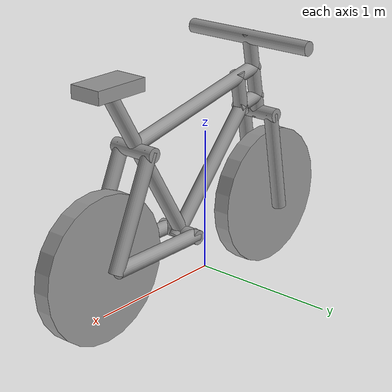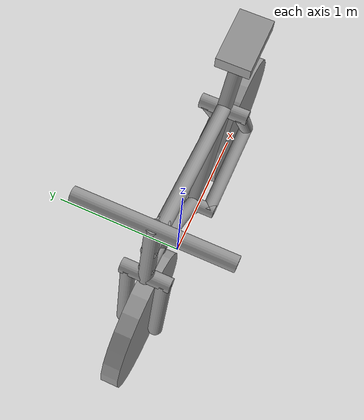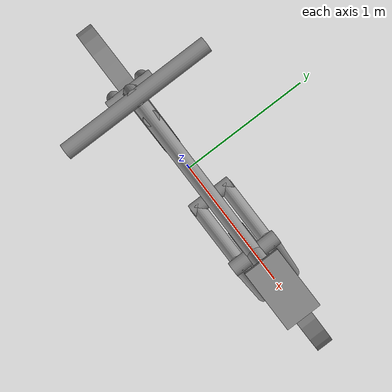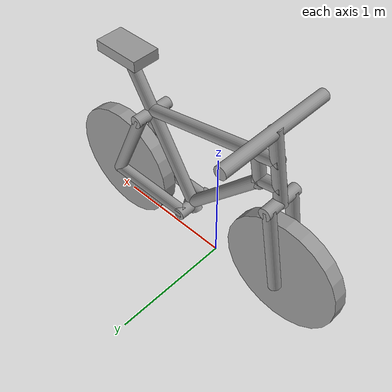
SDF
<sdf version="1.6">
 <model name="turtle1">
  <link name="link_0">
   <pose>1.02325 -0 0.352338 1.5707 -0 0</pose>
   <inertial>
    <mass>1</mass>
    <inertia><ixx>0.145833</ixx><ixy>0</ixy><ixz>0</ixz><iyy>0.145833</iyy><iyz>0</iyz><izz>0.125</izz></inertia>
   </inertial>
   <visual name="visual">
    <geometry><cylinder><radius>0.5</radius><length>0.12</length></cylinder></geometry>
    <material>
     <lighting>1</lighting>
     <script><uri>file://media/materials/scripts/gazebo.material</uri><name>Gazebo/Grey</name></script>
     <ambient>0.3 0.3 0.3 1</ambient>
     <diffuse>0.7 0.7 0.7 1</diffuse>
     <specular>0.01 0.01 0.01 1</specular>
     <emissive>0 0 0 1</emissive>
     <shader type="vertex"><normal_map>__default__</normal_map></shader>
    </material>
   </visual>
   <collision name="collision">
    <geometry><cylinder><radius>0.5</radius><length>0.12</length></cylinder></geometry>
    <surface>
     <friction>
      <ode><mu>1</mu><mu2>1</mu2><fdir1>0 0 0</fdir1><slip1>0</slip1><slip2>0</slip2></ode>
      <torsional>
       <coefficient>1</coefficient>
       <patch_radius>0</patch_radius>
       <surface_radius>0</surface_radius>
       <use_patch_radius>1</use_patch_radius>
       <ode><slip>0</slip></ode>
      </torsional>
     </friction>
     <bounce><restitution_coefficient>0</restitution_coefficient><threshold>1e+06</threshold></bounce>
     <contact>
      <collide_without_contact>0</collide_without_contact>
      <collide_without_contact_bitmask>1</collide_without_contact_bitmask>
      <collide_bitmask>1</collide_bitmask>
      <ode>
       <soft_cfm>0</soft_cfm>
       <soft_erp>0.2</soft_erp>
       <kp>1e+13</kp>
       <kd>1</kd>
       <max_vel>0.01</max_vel>
       <min_depth>0</min_depth>
      </ode>
      <bullet>
       <split_impulse>1</split_impulse>
       <split_impulse_penetration_threshold>-0.01</split_impulse_penetration_threshold>
       <soft_cfm>0</soft_cfm>
       <soft_erp>0.2</soft_erp>
       <kp>1e+13</kp>
       <kd>1</kd>
      </bullet>
     </contact>
    </surface>
   </collision>
  </link>
  <link name="link_0_0">
   <pose>-0.625228 -0.12 0.648148 0 0.169207 0</pose>
   <inertial>
    <mass>0.0814675</mass>
    <inertia>
     <ixx>0.00720375</ixx>
     <ixy>0</ixy>
     <ixz>0</ixz>
     <iyy>0.00720375</iyy>
     <iyz>0</iyz>
     <izz>0.00082962</izz>
    </inertia>
   </inertial>
   <visual name="visual">
    <geometry><cylinder><radius>0.05</radius><length>0.75</length></cylinder></geometry>
    <material>
     <lighting>1</lighting>
     <script><uri>file://media/materials/scripts/gazebo.material</uri><name>Gazebo/Grey</name></script>
     <ambient>0.3 0.3 0.3 1</ambient>
     <diffuse>0.7 0.7 0.7 1</diffuse>
     <specular>0.01 0.01 0.01 1</specular>
     <emissive>0 0 0 1</emissive>
     <shader type="vertex"><normal_map>__default__</normal_map></shader>
    </material>
   </visual>
   <collision name="collision">
    <geometry><cylinder><radius>0.05</radius><length>0.75</length></cylinder></geometry>
    <surface>
     <friction>
      <ode><mu>1</mu><mu2>1</mu2><fdir1>0 0 0</fdir1><slip1>0</slip1><slip2>0</slip2></ode>
      <torsional>
       <coefficient>1</coefficient>
       <patch_radius>0</patch_radius>
       <surface_radius>0</surface_radius>
       <use_patch_radius>1</use_patch_radius>
       <ode><slip>0</slip></ode>
      </torsional>
     </friction>
     <bounce><restitution_coefficient>0</restitution_coefficient><threshold>1e+06</threshold></bounce>
     <contact>
      <collide_without_contact>0</collide_without_contact>
      <collide_without_contact_bitmask>1</collide_without_contact_bitmask>
      <collide_bitmask>1</collide_bitmask>
      <ode>
       <soft_cfm>0</soft_cfm>
       <soft_erp>0.2</soft_erp>
       <kp>1e+13</kp>
       <kd>1</kd>
       <max_vel>0.01</max_vel>
       <min_depth>0</min_depth>
      </ode>
      <bullet>
       <split_impulse>1</split_impulse>
       <split_impulse_penetration_threshold>-0.01</split_impulse_penetration_threshold>
       <soft_cfm>0</soft_cfm>
       <soft_erp>0.2</soft_erp>
       <kp>1e+13</kp>
       <kd>1</kd>
      </bullet>
     </contact>
    </surface>
   </collision>
  </link>
  <link name="link_0_0_clone">
   <pose>-0.625228 0.12 0.648148 0 0.169207 0</pose>
   <inertial>
    <mass>0.0814675</mass>
    <inertia>
     <ixx>0.00720375</ixx>
     <ixy>0</ixy>
     <ixz>0</ixz>
     <iyy>0.00720375</iyy>
     <iyz>0</iyz>
     <izz>0.00082962</izz>
    </inertia>
   </inertial>
   <visual name="visual_0">
    <geometry><cylinder><radius>0.05</radius><length>0.75</length></cylinder></geometry>
    <material>
     <lighting>1</lighting>
     <script><uri>file://media/materials/scripts/gazebo.material</uri><name>Gazebo/Grey</name></script>
     <ambient>0.3 0.3 0.3 1</ambient>
     <diffuse>0.7 0.7 0.7 1</diffuse>
     <specular>0.01 0.01 0.01 1</specular>
     <emissive>0 0 0 1</emissive>
     <shader type="vertex"><normal_map>__default__</normal_map></shader>
    </material>
   </visual>
   <collision name="collision">
    <geometry><cylinder><radius>0.05</radius><length>0.75</length></cylinder></geometry>
    <surface>
     <friction>
      <ode><mu>1</mu><mu2>1</mu2><fdir1>0 0 0</fdir1><slip1>0</slip1><slip2>0</slip2></ode>
      <torsional>
       <coefficient>1</coefficient>
       <patch_radius>0</patch_radius>
       <surface_radius>0</surface_radius>
       <use_patch_radius>1</use_patch_radius>
       <ode><slip>0</slip></ode>
      </torsional>
     </friction>
     <bounce><restitution_coefficient>0</restitution_coefficient><threshold>1e+06</threshold></bounce>
     <contact>
      <collide_without_contact>0</collide_without_contact>
      <collide_without_contact_bitmask>1</collide_without_contact_bitmask>
      <collide_bitmask>1</collide_bitmask>
      <ode>
       <soft_cfm>0</soft_cfm>
       <soft_erp>0.2</soft_erp>
       <kp>1e+13</kp>
       <kd>1</kd>
       <max_vel>0.01</max_vel>
       <min_depth>0</min_depth>
      </ode>
      <bullet>
       <split_impulse>1</split_impulse>
       <split_impulse_penetration_threshold>-0.01</split_impulse_penetration_threshold>
       <soft_cfm>0</soft_cfm>
       <soft_erp>0.2</soft_erp>
       <kp>1e+13</kp>
       <kd>1</kd>
      </bullet>
     </contact>
    </surface>
   </collision>
  </link>
  <link name="link_0_1">
   <pose>-0.358078 -0 1.18776 0.001566 0.170039 0.000158</pose>
   <inertial>
    <mass>0.0427594</mass>
    <inertia>
     <ixx>0.00153031</ixx>
     <ixy>0</ixy>
     <ixz>0</ixz>
     <iyy>0.00153031</iyy>
     <iyz>0</iyz>
     <izz>0.00037209</izz>
    </inertia>
   </inertial>
   <visual name="visual">
    <geometry><cylinder><radius>0.05</radius><length>0.307109</length></cylinder></geometry>
    <material>
     <lighting>1</lighting>
     <script><uri>file://media/materials/scripts/gazebo.material</uri><name>Gazebo/Grey</name></script>
     <ambient>0.3 0.3 0.3 1</ambient>
     <diffuse>0.7 0.7 0.7 1</diffuse>
     <specular>0.01 0.01 0.01 1</specular>
     <emissive>0 0 0 1</emissive>
     <shader type="vertex"><normal_map>__default__</normal_map></shader>
    </material>
   </visual>
   <collision name="collision">
    <geometry><cylinder><radius>0.05</radius><length>0.307109</length></cylinder></geometry>
    <surface>
     <friction>
      <ode><mu>1</mu><mu2>1</mu2><fdir1>0 0 0</fdir1><slip1>0</slip1><slip2>0</slip2></ode>
      <torsional>
       <coefficient>1</coefficient>
       <patch_radius>0</patch_radius>
       <surface_radius>0</surface_radius>
       <use_patch_radius>1</use_patch_radius>
       <ode><slip>0</slip></ode>
      </torsional>
     </friction>
     <bounce><restitution_coefficient>0</restitution_coefficient><threshold>1e+06</threshold></bounce>
     <contact>
      <collide_without_contact>0</collide_without_contact>
      <collide_without_contact_bitmask>1</collide_without_contact_bitmask>
      <collide_bitmask>1</collide_bitmask>
      <ode>
       <soft_cfm>0</soft_cfm>
       <soft_erp>0.2</soft_erp>
       <kp>1e+13</kp>
       <kd>1</kd>
       <max_vel>0.01</max_vel>
       <min_depth>0</min_depth>
      </ode>
      <bullet>
       <split_impulse>1</split_impulse>
       <split_impulse_penetration_threshold>-0.01</split_impulse_penetration_threshold>
       <soft_cfm>0</soft_cfm>
       <soft_erp>0.2</soft_erp>
       <kp>1e+13</kp>
       <kd>1</kd>
      </bullet>
     </contact>
    </surface>
   </collision>
  </link>
  <link name="link_0_clone">
   <pose>-0.669823 -0 0.352338 1.5707 -0 0</pose>
   <inertial>
    <mass>1</mass>
    <inertia><ixx>0.145833</ixx><ixy>0</ixy><ixz>0</ixz><iyy>0.145833</iyy><iyz>0</iyz><izz>0.125</izz></inertia>
   </inertial>
   <visual name="visual">
    <geometry><cylinder><radius>0.5</radius><length>0.12</length></cylinder></geometry>
    <material>
     <lighting>1</lighting>
     <script><uri>file://media/materials/scripts/gazebo.material</uri><name>Gazebo/Grey</name></script>
     <ambient>0.3 0.3 0.3 1</ambient>
     <diffuse>0.7 0.7 0.7 1</diffuse>
     <specular>0.01 0.01 0.01 1</specular>
     <emissive>0 0 0 1</emissive>
     <shader type="vertex"><normal_map>__default__</normal_map></shader>
    </material>
   </visual>
   <collision name="collision">
    <geometry><cylinder><radius>0.5</radius><length>0.12</length></cylinder></geometry>
    <surface>
     <friction>
      <ode><mu>1</mu><mu2>1</mu2><fdir1>0 0 0</fdir1><slip1>0</slip1><slip2>0</slip2></ode>
      <torsional>
       <coefficient>1</coefficient>
       <patch_radius>0</patch_radius>
       <surface_radius>0</surface_radius>
       <use_patch_radius>1</use_patch_radius>
       <ode><slip>0</slip></ode>
      </torsional>
     </friction>
     <bounce><restitution_coefficient>0</restitution_coefficient><threshold>1e+06</threshold></bounce>
     <contact>
      <collide_without_contact>0</collide_without_contact>
      <collide_without_contact_bitmask>1</collide_without_contact_bitmask>
      <collide_bitmask>1</collide_bitmask>
      <ode>
       <soft_cfm>0</soft_cfm>
       <soft_erp>0.2</soft_erp>
       <kp>1e+13</kp>
       <kd>1</kd>
       <max_vel>0.01</max_vel>
       <min_depth>0</min_depth>
      </ode>
      <bullet>
       <split_impulse>1</split_impulse>
       <split_impulse_penetration_threshold>-0.01</split_impulse_penetration_threshold>
       <soft_cfm>0</soft_cfm>
       <soft_erp>0.2</soft_erp>
       <kp>1e+13</kp>
       <kd>1</kd>
      </bullet>
     </contact>
    </surface>
   </collision>
  </link>
  <link name="link_1">
   <pose>-0.51299 0 1.28445 0 0.187784 0</pose>
   <inertial>
    <mass>0.778608</mass>
    <inertia>
     <ixx>0.0879975</ixx>
     <ixy>0</ixy>
     <ixz>0</ixz>
     <iyy>0.0879975</iyy>
     <iyz>0</iyz>
     <izz>0.097326</izz>
    </inertia>
   </inertial>
   <visual name="visual">
    <geometry><cylinder><radius>0.05</radius><length>0.622887</length></cylinder></geometry>
    <material>
     <lighting>1</lighting>
     <script><uri>file://media/materials/scripts/gazebo.material</uri><name>Gazebo/Grey</name></script>
     <ambient>0.3 0.3 0.3 1</ambient>
     <diffuse>0.7 0.7 0.7 1</diffuse>
     <specular>0.01 0.01 0.01 1</specular>
     <emissive>0 0 0 1</emissive>
     <shader type="vertex"><normal_map>__default__</normal_map></shader>
    </material>
   </visual>
   <collision name="collision">
    <geometry><cylinder><radius>0.05</radius><length>0.622887</length></cylinder></geometry>
    <surface>
     <friction>
      <ode><mu>1</mu><mu2>1</mu2><fdir1>0 0 0</fdir1><slip1>0</slip1><slip2>0</slip2></ode>
      <torsional>
       <coefficient>1</coefficient>
       <patch_radius>0</patch_radius>
       <surface_radius>0</surface_radius>
       <use_patch_radius>1</use_patch_radius>
       <ode><slip>0</slip></ode>
      </torsional>
     </friction>
     <bounce><restitution_coefficient>0</restitution_coefficient><threshold>1e+06</threshold></bounce>
     <contact>
      <collide_without_contact>0</collide_without_contact>
      <collide_without_contact_bitmask>1</collide_without_contact_bitmask>
      <collide_bitmask>1</collide_bitmask>
      <ode>
       <soft_cfm>0</soft_cfm>
       <soft_erp>0.2</soft_erp>
       <kp>1e+13</kp>
       <kd>1</kd>
       <max_vel>0.01</max_vel>
       <min_depth>0</min_depth>
      </ode>
      <bullet>
       <split_impulse>1</split_impulse>
       <split_impulse_penetration_threshold>-0.01</split_impulse_penetration_threshold>
       <soft_cfm>0</soft_cfm>
       <soft_erp>0.2</soft_erp>
       <kp>1e+13</kp>
       <kd>1</kd>
      </bullet>
     </contact>
    </surface>
   </collision>
  </link>
  <link name="link_2">
   <pose>0.613954 0.12 0.352338 -1e-06 -1.5707 1e-06</pose>
   <inertial>
    <mass>1</mass>
    <inertia><ixx>0.145833</ixx><ixy>0</ixy><ixz>0</ixz><iyy>0.145833</iyy><iyz>0</iyz><izz>0.125</izz></inertia>
   </inertial>
   <visual name="visual">
    <geometry><cylinder><radius>0.05</radius><length>0.75</length></cylinder></geometry>
    <material>
     <lighting>1</lighting>
     <script><uri>file://media/materials/scripts/gazebo.material</uri><name>Gazebo/Grey</name></script>
     <ambient>0.3 0.3 0.3 1</ambient>
     <diffuse>0.7 0.7 0.7 1</diffuse>
     <specular>0.01 0.01 0.01 1</specular>
     <emissive>0 0 0 1</emissive>
     <shader type="vertex"><normal_map>__default__</normal_map></shader>
    </material>
   </visual>
   <collision name="collision">
    <geometry><cylinder><radius>0.05</radius><length>0.75</length></cylinder></geometry>
    <surface>
     <friction>
      <ode><mu>1</mu><mu2>1</mu2><fdir1>0 0 0</fdir1><slip1>0</slip1><slip2>0</slip2></ode>
      <torsional>
       <coefficient>1</coefficient>
       <patch_radius>0</patch_radius>
       <surface_radius>0</surface_radius>
       <use_patch_radius>1</use_patch_radius>
       <ode><slip>0</slip></ode>
      </torsional>
     </friction>
     <bounce><restitution_coefficient>0</restitution_coefficient><threshold>1e+06</threshold></bounce>
     <contact>
      <collide_without_contact>0</collide_without_contact>
      <collide_without_contact_bitmask>1</collide_without_contact_bitmask>
      <collide_bitmask>1</collide_bitmask>
      <ode>
       <soft_cfm>0</soft_cfm>
       <soft_erp>0.2</soft_erp>
       <kp>1e+13</kp>
       <kd>1</kd>
       <max_vel>0.01</max_vel>
       <min_depth>0</min_depth>
      </ode>
      <bullet>
       <split_impulse>1</split_impulse>
       <split_impulse_penetration_threshold>-0.01</split_impulse_penetration_threshold>
       <soft_cfm>0</soft_cfm>
       <soft_erp>0.2</soft_erp>
       <kp>1e+13</kp>
       <kd>1</kd>
      </bullet>
     </contact>
    </surface>
   </collision>
  </link>
  <link name="link_2_0">
   <pose>0.080962 0 1.21125 0 -1.3588 0</pose>
   <inertial>
    <mass>1.25519</mass>
    <inertia>
     <ixx>0.243245</ixx>
     <ixy>0</ixy>
     <ixz>0</ixz>
     <iyy>0.243245</iyy>
     <iyz>0</iyz>
     <izz>0.156899</izz>
    </inertia>
   </inertial>
   <visual name="visual">
    <geometry><cylinder><radius>0.05</radius><length>1.25519</length></cylinder></geometry>
    <material>
     <lighting>1</lighting>
     <script><uri>file://media/materials/scripts/gazebo.material</uri><name>Gazebo/Grey</name></script>
     <ambient>0.3 0.3 0.3 1</ambient>
     <diffuse>0.7 0.7 0.7 1</diffuse>
     <specular>0.01 0.01 0.01 1</specular>
     <emissive>0 0 0 1</emissive>
     <shader type="vertex"><normal_map>__default__</normal_map></shader>
    </material>
   </visual>
   <collision name="collision">
    <geometry><cylinder><radius>0.05</radius><length>1.25519</length></cylinder></geometry>
    <surface>
     <friction>
      <ode><mu>1</mu><mu2>1</mu2><fdir1>0 0 0</fdir1><slip1>0</slip1><slip2>0</slip2></ode>
      <torsional>
       <coefficient>1</coefficient>
       <patch_radius>0</patch_radius>
       <surface_radius>0</surface_radius>
       <use_patch_radius>1</use_patch_radius>
       <ode><slip>0</slip></ode>
      </torsional>
     </friction>
     <bounce><restitution_coefficient>0</restitution_coefficient><threshold>1e+06</threshold></bounce>
     <contact>
      <collide_without_contact>0</collide_without_contact>
      <collide_without_contact_bitmask>1</collide_without_contact_bitmask>
      <collide_bitmask>1</collide_bitmask>
      <ode>
       <soft_cfm>0</soft_cfm>
       <soft_erp>0.2</soft_erp>
       <kp>1e+13</kp>
       <kd>1</kd>
       <max_vel>0.01</max_vel>
       <min_depth>0</min_depth>
      </ode>
      <bullet>
       <split_impulse>1</split_impulse>
       <split_impulse_penetration_threshold>-0.01</split_impulse_penetration_threshold>
       <soft_cfm>0</soft_cfm>
       <soft_erp>0.2</soft_erp>
       <kp>1e+13</kp>
       <kd>1</kd>
      </bullet>
     </contact>
    </surface>
   </collision>
  </link>
  <link name="link_2_0_clone">
   <pose>-0.455924 -0 1.10626 0.007437 -1.36178 -0.007383</pose>
   <inertial>
    <mass>0.23468</mass>
    <inertia>
     <ixx>0.0157446</ixx>
     <ixy>0</ixy>
     <ixz>0</ixz>
     <iyy>0.0157446</iyy>
     <iyz>0</iyz>
     <izz>0.029335</izz>
    </inertia>
   </inertial>
   <visual name="visual">
    <geometry><cylinder><radius>0.05</radius><length>0.23468</length></cylinder></geometry>
    <material>
     <lighting>1</lighting>
     <script><uri>file://media/materials/scripts/gazebo.material</uri><name>Gazebo/Grey</name></script>
     <ambient>0.3 0.3 0.3 1</ambient>
     <diffuse>0.7 0.7 0.7 1</diffuse>
     <specular>0.01 0.01 0.01 1</specular>
     <emissive>0 0 0 1</emissive>
     <shader type="vertex"><normal_map>__default__</normal_map></shader>
    </material>
   </visual>
   <collision name="collision">
    <geometry><cylinder><radius>0.05</radius><length>0.23468</length></cylinder></geometry>
    <surface>
     <friction>
      <ode><mu>1</mu><mu2>1</mu2><fdir1>0 0 0</fdir1><slip1>0</slip1><slip2>0</slip2></ode>
      <torsional>
       <coefficient>1</coefficient>
       <patch_radius>0</patch_radius>
       <surface_radius>0</surface_radius>
       <use_patch_radius>1</use_patch_radius>
       <ode><slip>0</slip></ode>
      </torsional>
     </friction>
     <bounce><restitution_coefficient>0</restitution_coefficient><threshold>1e+06</threshold></bounce>
     <contact>
      <collide_without_contact>0</collide_without_contact>
      <collide_without_contact_bitmask>1</collide_without_contact_bitmask>
      <collide_bitmask>1</collide_bitmask>
      <ode>
       <soft_cfm>0</soft_cfm>
       <soft_erp>0.2</soft_erp>
       <kp>1e+13</kp>
       <kd>1</kd>
       <max_vel>0.01</max_vel>
       <min_depth>0</min_depth>
      </ode>
      <bullet>
       <split_impulse>1</split_impulse>
       <split_impulse_penetration_threshold>-0.01</split_impulse_penetration_threshold>
       <soft_cfm>0</soft_cfm>
       <soft_erp>0.2</soft_erp>
       <kp>1e+13</kp>
       <kd>1</kd>
      </bullet>
     </contact>
    </surface>
   </collision>
  </link>
  <link name="link_3">
   <pose>-0.045403 -0 0.712377 0 -0.736782 0</pose>
   <inertial>
    <mass>1.03685</mass>
    <inertia>
     <ixx>0.157694</ixx>
     <ixy>0</ixy>
     <ixz>0</ixz>
     <iyy>0.157694</iyy>
     <iyz>0</iyz>
     <izz>0.129607</izz>
    </inertia>
   </inertial>
   <visual name="visual">
    <geometry><cylinder><radius>0.05</radius><length>1.03685</length></cylinder></geometry>
    <material>
     <lighting>1</lighting>
     <script><uri>file://media/materials/scripts/gazebo.material</uri><name>Gazebo/Grey</name></script>
     <ambient>0.3 0.3 0.3 1</ambient>
     <diffuse>0.7 0.7 0.7 1</diffuse>
     <specular>0.01 0.01 0.01 1</specular>
     <emissive>0 0 0 1</emissive>
     <shader type="vertex"><normal_map>__default__</normal_map></shader>
    </material>
   </visual>
   <collision name="collision">
    <geometry><cylinder><radius>0.05</radius><length>1.03686</length></cylinder></geometry>
    <surface>
     <friction>
      <ode><mu>1</mu><mu2>1</mu2><fdir1>0 0 0</fdir1><slip1>0</slip1><slip2>0</slip2></ode>
      <torsional>
       <coefficient>1</coefficient>
       <patch_radius>0</patch_radius>
       <surface_radius>0</surface_radius>
       <use_patch_radius>1</use_patch_radius>
       <ode><slip>0</slip></ode>
      </torsional>
     </friction>
     <bounce><restitution_coefficient>0</restitution_coefficient><threshold>1e+06</threshold></bounce>
     <contact>
      <collide_without_contact>0</collide_without_contact>
      <collide_without_contact_bitmask>1</collide_without_contact_bitmask>
      <collide_bitmask>1</collide_bitmask>
      <ode>
       <soft_cfm>0</soft_cfm>
       <soft_erp>0.2</soft_erp>
       <kp>1e+13</kp>
       <kd>1</kd>
       <max_vel>0.01</max_vel>
       <min_depth>0</min_depth>
      </ode>
      <bullet>
       <split_impulse>1</split_impulse>
       <split_impulse_penetration_threshold>-0.01</split_impulse_penetration_threshold>
       <soft_cfm>0</soft_cfm>
       <soft_erp>0.2</soft_erp>
       <kp>1e+13</kp>
       <kd>1</kd>
      </bullet>
     </contact>
    </surface>
   </collision>
  </link>
  <link name="link_4">
   <pose>0.613954 -0.12 0.352338 -1e-06 -1.5707 1e-06</pose>
   <inertial>
    <mass>1</mass>
    <inertia><ixx>0.145833</ixx><ixy>0</ixy><ixz>0</ixz><iyy>0.145833</iyy><iyz>0</iyz><izz>0.125</izz></inertia>
   </inertial>
   <visual name="visual">
    <geometry><cylinder><radius>0.05</radius><length>0.75</length></cylinder></geometry>
    <material>
     <lighting>1</lighting>
     <script><uri>file://media/materials/scripts/gazebo.material</uri><name>Gazebo/Grey</name></script>
     <ambient>0.3 0.3 0.3 1</ambient>
     <diffuse>0.7 0.7 0.7 1</diffuse>
     <specular>0.01 0.01 0.01 1</specular>
     <emissive>0 0 0 1</emissive>
     <shader type="vertex"><normal_map>__default__</normal_map></shader>
    </material>
   </visual>
   <collision name="collision">
    <geometry><cylinder><radius>0.05</radius><length>0.75</length></cylinder></geometry>
    <surface>
     <friction>
      <ode><mu>1</mu><mu2>1</mu2><fdir1>0 0 0</fdir1><slip1>0</slip1><slip2>0</slip2></ode>
      <torsional>
       <coefficient>1</coefficient>
       <patch_radius>0</patch_radius>
       <surface_radius>0</surface_radius>
       <use_patch_radius>1</use_patch_radius>
       <ode><slip>0</slip></ode>
      </torsional>
     </friction>
     <bounce><restitution_coefficient>0</restitution_coefficient><threshold>1e+06</threshold></bounce>
     <contact>
      <collide_without_contact>0</collide_without_contact>
      <collide_without_contact_bitmask>1</collide_without_contact_bitmask>
      <collide_bitmask>1</collide_bitmask>
      <ode>
       <soft_cfm>0</soft_cfm>
       <soft_erp>0.2</soft_erp>
       <kp>1e+13</kp>
       <kd>1</kd>
       <max_vel>0.01</max_vel>
       <min_depth>0</min_depth>
      </ode>
      <bullet>
       <split_impulse>1</split_impulse>
       <split_impulse_penetration_threshold>-0.01</split_impulse_penetration_threshold>
       <soft_cfm>0</soft_cfm>
       <soft_erp>0.2</soft_erp>
       <kp>1e+13</kp>
       <kd>1</kd>
      </bullet>
     </contact>
    </surface>
   </collision>
  </link>
  <link name="link_4_0">
   <pose>-0.456838 0.000116 1.5608 1.5707 -0 0</pose>
   <inertial>
    <mass>1</mass>
    <inertia><ixx>0.145833</ixx><ixy>0</ixy><ixz>0</ixz><iyy>0.145833</iyy><iyz>0</iyz><izz>0.125</izz></inertia>
   </inertial>
   <visual name="visual">
    <geometry><cylinder><radius>0.05</radius><length>1</length></cylinder></geometry>
    <material>
     <lighting>1</lighting>
     <script><uri>file://media/materials/scripts/gazebo.material</uri><name>Gazebo/Grey</name></script>
     <ambient>0.3 0.3 0.3 1</ambient>
     <diffuse>0.7 0.7 0.7 1</diffuse>
     <specular>0.01 0.01 0.01 1</specular>
     <emissive>0 0 0 1</emissive>
     <shader type="vertex"><normal_map>__default__</normal_map></shader>
    </material>
   </visual>
   <collision name="collision">
    <geometry><cylinder><radius>0.05</radius><length>1</length></cylinder></geometry>
    <surface>
     <friction>
      <ode><mu>1</mu><mu2>1</mu2><fdir1>0 0 0</fdir1><slip1>0</slip1><slip2>0</slip2></ode>
      <torsional>
       <coefficient>1</coefficient>
       <patch_radius>0</patch_radius>
       <surface_radius>0</surface_radius>
       <use_patch_radius>1</use_patch_radius>
       <ode><slip>0</slip></ode>
      </torsional>
     </friction>
     <bounce><restitution_coefficient>0</restitution_coefficient><threshold>1e+06</threshold></bounce>
     <contact>
      <collide_without_contact>0</collide_without_contact>
      <collide_without_contact_bitmask>1</collide_without_contact_bitmask>
      <collide_bitmask>1</collide_bitmask>
      <ode>
       <soft_cfm>0</soft_cfm>
       <soft_erp>0.2</soft_erp>
       <kp>1e+13</kp>
       <kd>1</kd>
       <max_vel>0.01</max_vel>
       <min_depth>0</min_depth>
      </ode>
      <bullet>
       <split_impulse>1</split_impulse>
       <split_impulse_penetration_threshold>-0.01</split_impulse_penetration_threshold>
       <soft_cfm>0</soft_cfm>
       <soft_erp>0.2</soft_erp>
       <kp>1e+13</kp>
       <kd>1</kd>
      </bullet>
     </contact>
    </surface>
   </collision>
  </link>
  <link name="link_5">
   <pose>0.258436 0 0.352338 1.5707 -0 0</pose>
   <inertial>
    <mass>1.37224</mass>
    <inertia>
     <ixx>0.301094</ixx>
     <ixy>0</ixy>
     <ixz>0</ixz>
     <iyy>0.301094</iyy>
     <iyz>0</iyz>
     <izz>0.17153</izz>
    </inertia>
   </inertial>
   <visual name="visual">
    <geometry><cylinder><radius>0.05</radius><length>0.329338</length></cylinder></geometry>
    <material>
     <lighting>1</lighting>
     <script><uri>file://media/materials/scripts/gazebo.material</uri><name>Gazebo/Grey</name></script>
     <ambient>0.3 0.3 0.3 1</ambient>
     <diffuse>0.7 0.7 0.7 1</diffuse>
     <specular>0.01 0.01 0.01 1</specular>
     <emissive>0 0 0 1</emissive>
     <shader type="vertex"><normal_map>__default__</normal_map></shader>
    </material>
   </visual>
   <collision name="collision">
    <geometry><cylinder><radius>0.05</radius><length>0.329338</length></cylinder></geometry>
    <surface>
     <friction>
      <ode><mu>1</mu><mu2>1</mu2><fdir1>0 0 0</fdir1><slip1>0</slip1><slip2>0</slip2></ode>
      <torsional>
       <coefficient>1</coefficient>
       <patch_radius>0</patch_radius>
       <surface_radius>0</surface_radius>
       <use_patch_radius>1</use_patch_radius>
       <ode><slip>0</slip></ode>
      </torsional>
     </friction>
     <bounce><restitution_coefficient>0</restitution_coefficient><threshold>1e+06</threshold></bounce>
     <contact>
      <collide_without_contact>0</collide_without_contact>
      <collide_without_contact_bitmask>1</collide_without_contact_bitmask>
      <collide_bitmask>1</collide_bitmask>
      <ode>
       <soft_cfm>0</soft_cfm>
       <soft_erp>0.2</soft_erp>
       <kp>1e+13</kp>
       <kd>1</kd>
       <max_vel>0.01</max_vel>
       <min_depth>0</min_depth>
      </ode>
      <bullet>
       <split_impulse>1</split_impulse>
       <split_impulse_penetration_threshold>-0.01</split_impulse_penetration_threshold>
       <soft_cfm>0</soft_cfm>
       <soft_erp>0.2</soft_erp>
       <kp>1e+13</kp>
       <kd>1</kd>
      </bullet>
     </contact>
    </surface>
   </collision>
  </link>
  <link name="link_5_clone">
   <pose>0.68483 -0 1.05093 1.5707 -0 0</pose>
   <inertial>
    <mass>1.40201</mass>
    <inertia>
     <ixx>0.317275</ixx>
     <ixy>0</ixy>
     <ixz>0</ixz>
     <iyy>0.317275</iyy>
     <iyz>0</iyz>
     <izz>0.175251</izz>
    </inertia>
   </inertial>
   <visual name="visual">
    <geometry><cylinder><radius>0.05</radius><length>0.336481</length></cylinder></geometry>
    <material>
     <lighting>1</lighting>
     <script><uri>file://media/materials/scripts/gazebo.material</uri><name>Gazebo/Grey</name></script>
     <ambient>0.3 0.3 0.3 1</ambient>
     <diffuse>0.7 0.7 0.7 1</diffuse>
     <specular>0.01 0.01 0.01 1</specular>
     <emissive>0 0 0 1</emissive>
     <shader type="vertex"><normal_map>__default__</normal_map></shader>
    </material>
   </visual>
   <collision name="collision">
    <geometry><cylinder><radius>0.05</radius><length>0.336481</length></cylinder></geometry>
    <surface>
     <friction>
      <ode><mu>1</mu><mu2>1</mu2><fdir1>0 0 0</fdir1><slip1>0</slip1><slip2>0</slip2></ode>
      <torsional>
       <coefficient>1</coefficient>
       <patch_radius>0</patch_radius>
       <surface_radius>0</surface_radius>
       <use_patch_radius>1</use_patch_radius>
       <ode><slip>0</slip></ode>
      </torsional>
     </friction>
     <bounce><restitution_coefficient>0</restitution_coefficient><threshold>1e+06</threshold></bounce>
     <contact>
      <collide_without_contact>0</collide_without_contact>
      <collide_without_contact_bitmask>1</collide_without_contact_bitmask>
      <collide_bitmask>1</collide_bitmask>
      <ode>
       <soft_cfm>0</soft_cfm>
       <soft_erp>0.2</soft_erp>
       <kp>1e+13</kp>
       <kd>1</kd>
       <max_vel>0.01</max_vel>
       <min_depth>0</min_depth>
      </ode>
      <bullet>
       <split_impulse>1</split_impulse>
       <split_impulse_penetration_threshold>-0.01</split_impulse_penetration_threshold>
       <soft_cfm>0</soft_cfm>
       <soft_erp>0.2</soft_erp>
       <kp>1e+13</kp>
       <kd>1</kd>
      </bullet>
     </contact>
    </surface>
   </collision>
  </link>
  <link name="link_5_clone_0">
   <pose>-0.562828 0 1.00428 1.5707 -0 0</pose>
   <inertial>
    <mass>1.40306</mass>
    <inertia>
     <ixx>0.317861</ixx>
     <ixy>0</ixy>
     <ixz>0</ixz>
     <iyy>0.317861</iyy>
     <iyz>0</iyz>
     <izz>0.175383</izz>
    </inertia>
   </inertial>
   <visual name="visual">
    <geometry><cylinder><radius>0.05</radius><length>0.336735</length></cylinder></geometry>
    <material>
     <lighting>1</lighting>
     <script><uri>file://media/materials/scripts/gazebo.material</uri><name>Gazebo/Grey</name></script>
     <ambient>0.3 0.3 0.3 1</ambient>
     <diffuse>0.7 0.7 0.7 1</diffuse>
     <specular>0.01 0.01 0.01 1</specular>
     <emissive>0 0 0 1</emissive>
     <shader type="vertex"><normal_map>__default__</normal_map></shader>
    </material>
   </visual>
   <collision name="collision">
    <geometry><cylinder><radius>0.05</radius><length>0.336735</length></cylinder></geometry>
    <surface>
     <friction>
      <ode><mu>1</mu><mu2>1</mu2><fdir1>0 0 0</fdir1><slip1>0</slip1><slip2>0</slip2></ode>
      <torsional>
       <coefficient>1</coefficient>
       <patch_radius>0</patch_radius>
       <surface_radius>0</surface_radius>
       <use_patch_radius>1</use_patch_radius>
       <ode><slip>0</slip></ode>
      </torsional>
     </friction>
     <bounce><restitution_coefficient>0</restitution_coefficient><threshold>1e+06</threshold></bounce>
     <contact>
      <collide_without_contact>0</collide_without_contact>
      <collide_without_contact_bitmask>1</collide_without_contact_bitmask>
      <collide_bitmask>1</collide_bitmask>
      <ode>
       <soft_cfm>0</soft_cfm>
       <soft_erp>0.2</soft_erp>
       <kp>1e+13</kp>
       <kd>1</kd>
       <max_vel>0.01</max_vel>
       <min_depth>0</min_depth>
      </ode>
      <bullet>
       <split_impulse>1</split_impulse>
       <split_impulse_penetration_threshold>-0.01</split_impulse_penetration_threshold>
       <soft_cfm>0</soft_cfm>
       <soft_erp>0.2</soft_erp>
       <kp>1e+13</kp>
       <kd>1</kd>
      </bullet>
     </contact>
    </surface>
   </collision>
  </link>
  <link name="link_6">
   <pose>0.838954 0.12 0.702338 0 -0.423857 0</pose>
   <inertial>
    <mass>1</mass>
    <inertia><ixx>0.145833</ixx><ixy>0</ixy><ixz>0</ixz><iyy>0.145833</iyy><iyz>0</iyz><izz>0.125</izz></inertia>
   </inertial>
   <visual name="visual">
    <geometry><cylinder><radius>0.05</radius><length>0.8</length></cylinder></geometry>
    <material>
     <lighting>1</lighting>
     <script><uri>file://media/materials/scripts/gazebo.material</uri><name>Gazebo/Grey</name></script>
     <ambient>0.3 0.3 0.3 1</ambient>
     <diffuse>0.7 0.7 0.7 1</diffuse>
     <specular>0.01 0.01 0.01 1</specular>
     <emissive>0 0 0 1</emissive>
     <shader type="vertex"><normal_map>__default__</normal_map></shader>
    </material>
   </visual>
   <collision name="collision">
    <geometry><cylinder><radius>0.05</radius><length>0.8</length></cylinder></geometry>
    <surface>
     <friction>
      <ode><mu>1</mu><mu2>1</mu2><fdir1>0 0 0</fdir1><slip1>0</slip1><slip2>0</slip2></ode>
      <torsional>
       <coefficient>1</coefficient>
       <patch_radius>0</patch_radius>
       <surface_radius>0</surface_radius>
       <use_patch_radius>1</use_patch_radius>
       <ode><slip>0</slip></ode>
      </torsional>
     </friction>
     <bounce><restitution_coefficient>0</restitution_coefficient><threshold>1e+06</threshold></bounce>
     <contact>
      <collide_without_contact>0</collide_without_contact>
      <collide_without_contact_bitmask>1</collide_without_contact_bitmask>
      <collide_bitmask>1</collide_bitmask>
      <ode>
       <soft_cfm>0</soft_cfm>
       <soft_erp>0.2</soft_erp>
       <kp>1e+13</kp>
       <kd>1</kd>
       <max_vel>0.01</max_vel>
       <min_depth>0</min_depth>
      </ode>
      <bullet>
       <split_impulse>1</split_impulse>
       <split_impulse_penetration_threshold>-0.01</split_impulse_penetration_threshold>
       <soft_cfm>0</soft_cfm>
       <soft_erp>0.2</soft_erp>
       <kp>1e+13</kp>
       <kd>1</kd>
      </bullet>
     </contact>
    </surface>
   </collision>
  </link>
  <link name="link_6_clone">
   <pose>0.838954 -0.12 0.702338 0 -0.423857 0</pose>
   <inertial>
    <mass>1</mass>
    <inertia><ixx>0.145833</ixx><ixy>0</ixy><ixz>0</ixz><iyy>0.145833</iyy><iyz>0</iyz><izz>0.125</izz></inertia>
   </inertial>
   <visual name="visual">
    <geometry><cylinder><radius>0.05</radius><length>0.8</length></cylinder></geometry>
    <material>
     <lighting>1</lighting>
     <script><uri>file://media/materials/scripts/gazebo.material</uri><name>Gazebo/Grey</name></script>
     <ambient>0.3 0.3 0.3 1</ambient>
     <diffuse>0.7 0.7 0.7 1</diffuse>
     <specular>0.01 0.01 0.01 1</specular>
     <emissive>0 0 0 1</emissive>
     <shader type="vertex"><normal_map>__default__</normal_map></shader>
    </material>
   </visual>
   <collision name="collision">
    <geometry><cylinder><radius>0.05</radius><length>0.8</length></cylinder></geometry>
    <surface>
     <friction>
      <ode><mu>1</mu><mu2>1</mu2><fdir1>0 0 0</fdir1><slip1>0</slip1><slip2>0</slip2></ode>
      <torsional>
       <coefficient>1</coefficient>
       <patch_radius>0</patch_radius>
       <surface_radius>0</surface_radius>
       <use_patch_radius>1</use_patch_radius>
       <ode><slip>0</slip></ode>
      </torsional>
     </friction>
     <bounce><restitution_coefficient>0</restitution_coefficient><threshold>1e+06</threshold></bounce>
     <contact>
      <collide_without_contact>0</collide_without_contact>
      <collide_without_contact_bitmask>1</collide_without_contact_bitmask>
      <collide_bitmask>1</collide_bitmask>
      <ode>
       <soft_cfm>0</soft_cfm>
       <soft_erp>0.2</soft_erp>
       <kp>1e+13</kp>
       <kd>1</kd>
       <max_vel>0.01</max_vel>
       <min_depth>0</min_depth>
      </ode>
      <bullet>
       <split_impulse>1</split_impulse>
       <split_impulse_penetration_threshold>-0.01</split_impulse_penetration_threshold>
       <soft_cfm>0</soft_cfm>
       <soft_erp>0.2</soft_erp>
       <kp>1e+13</kp>
       <kd>1</kd>
      </bullet>
     </contact>
    </surface>
   </collision>
  </link>
  <link name="link_7">
   <pose>0.576649 -0 0.910069 0 0.534039 0</pose>
   <inertial>
    <mass>1</mass>
    <inertia><ixx>0.145833</ixx><ixy>0</ixy><ixz>0</ixz><iyy>0.145833</iyy><iyz>0</iyz><izz>0.125</izz></inertia>
   </inertial>
   <visual name="visual">
    <geometry><cylinder><radius>0.05</radius><length>1.4</length></cylinder></geometry>
    <material>
     <lighting>1</lighting>
     <script><uri>file://media/materials/scripts/gazebo.material</uri><name>Gazebo/Grey</name></script>
     <ambient>0.3 0.3 0.3 1</ambient>
     <diffuse>0.7 0.7 0.7 1</diffuse>
     <specular>0.01 0.01 0.01 1</specular>
     <emissive>0 0 0 1</emissive>
     <shader type="vertex"><normal_map>__default__</normal_map></shader>
    </material>
   </visual>
   <collision name="collision">
    <geometry><cylinder><radius>0.05</radius><length>1.4</length></cylinder></geometry>
    <surface>
     <friction>
      <ode><mu>1</mu><mu2>1</mu2><fdir1>0 0 0</fdir1><slip1>0</slip1><slip2>0</slip2></ode>
      <torsional>
       <coefficient>1</coefficient>
       <patch_radius>0</patch_radius>
       <surface_radius>0</surface_radius>
       <use_patch_radius>1</use_patch_radius>
       <ode><slip>0</slip></ode>
      </torsional>
     </friction>
     <bounce><restitution_coefficient>0</restitution_coefficient><threshold>1e+06</threshold></bounce>
     <contact>
      <collide_without_contact>0</collide_without_contact>
      <collide_without_contact_bitmask>1</collide_without_contact_bitmask>
      <collide_bitmask>1</collide_bitmask>
      <ode>
       <soft_cfm>0</soft_cfm>
       <soft_erp>0.2</soft_erp>
       <kp>1e+13</kp>
       <kd>1</kd>
       <max_vel>0.01</max_vel>
       <min_depth>0</min_depth>
      </ode>
      <bullet>
       <split_impulse>1</split_impulse>
       <split_impulse_penetration_threshold>-0.01</split_impulse_penetration_threshold>
       <soft_cfm>0</soft_cfm>
       <soft_erp>0.2</soft_erp>
       <kp>1e+13</kp>
       <kd>1</kd>
      </bullet>
     </contact>
    </surface>
   </collision>
  </link>
  <link name="link_8">
   <pose>0.905063 -0 1.50739 0 -0 0</pose>
   <inertial>
    <mass>0.00828747</mass>
    <inertia>
     <ixx>4.28421e-05</ixx>
     <ixy>0</ixy>
     <ixz>0</ixz>
     <iyy>0.00011523</iyy>
     <iyz>0</iyz>
     <izz>0.000147021</izz>
    </inertia>
   </inertial>
   <visual name="visual">
    <geometry><box><size>0.398533 0.232426 0.089452</size></box></geometry>
    <material>
     <lighting>1</lighting>
     <script><uri>file://media/materials/scripts/gazebo.material</uri><name>Gazebo/Grey</name></script>
     <ambient>0.3 0.3 0.3 1</ambient>
     <diffuse>0.7 0.7 0.7 1</diffuse>
     <specular>0.01 0.01 0.01 1</specular>
     <emissive>0 0 0 1</emissive>
     <shader type="vertex"><normal_map>__default__</normal_map></shader>
    </material>
   </visual>
   <collision name="collision">
    <geometry><box><size>0.398533 0.232426 0.089452</size></box></geometry>
    <surface>
     <friction>
      <ode><mu>1</mu><mu2>1</mu2><fdir1>0 0 0</fdir1><slip1>0</slip1><slip2>0</slip2></ode>
      <torsional>
       <coefficient>1</coefficient>
       <patch_radius>0</patch_radius>
       <surface_radius>0</surface_radius>
       <use_patch_radius>1</use_patch_radius>
       <ode><slip>0</slip></ode>
      </torsional>
     </friction>
     <bounce><restitution_coefficient>0</restitution_coefficient><threshold>1e+06</threshold></bounce>
     <contact>
      <collide_without_contact>0</collide_without_contact>
      <collide_without_contact_bitmask>1</collide_without_contact_bitmask>
      <collide_bitmask>1</collide_bitmask>
      <ode>
       <soft_cfm>0</soft_cfm>
       <soft_erp>0.2</soft_erp>
       <kp>1e+13</kp>
       <kd>1</kd>
       <max_vel>0.01</max_vel>
       <min_depth>0</min_depth>
      </ode>
      <bullet>
       <split_impulse>1</split_impulse>
       <split_impulse_penetration_threshold>-0.01</split_impulse_penetration_threshold>
       <soft_cfm>0</soft_cfm>
       <soft_erp>0.2</soft_erp>
       <kp>1e+13</kp>
       <kd>1</kd>
      </bullet>
     </contact>
    </surface>
   </collision>
  </link>
  <joint name="link_0_0_JOINT_0" type="revolute">
   <parent>link_0_0</parent>
   <child>link_0_clone</child>
   <axis>
    <xyz>0 0 1</xyz>
    <use_parent_model_frame>0</use_parent_model_frame>
    <limit>
     <lower>-1.79769e+308</lower>
     <upper>1.79769e+308</upper>
     <effort>-1</effort>
     <velocity>-1</velocity>
    </limit>
    <dynamics>
     <spring_reference>0</spring_reference>
     <spring_stiffness>0</spring_stiffness>
     <damping>0</damping>
     <friction>0</friction>
    </dynamics>
   </axis>
   <physics>
    <ode><limit><cfm>0</cfm><erp>0.2</erp></limit><suspension><cfm>0</cfm><erp>0.2</erp></suspension></ode>
   </physics>
  </joint>
  <joint name="link_0_0_clone_JOINT_1" type="revolute">
   <parent>link_0_0_clone</parent>
   <child>link_0_clone</child>
   <axis>
    <xyz>0 0 1</xyz>
    <use_parent_model_frame>0</use_parent_model_frame>
    <limit>
     <lower>-1.79769e+308</lower>
     <upper>1.79769e+308</upper>
     <effort>-1</effort>
     <velocity>-1</velocity>
    </limit>
    <dynamics>
     <spring_reference>0</spring_reference>
     <spring_stiffness>0</spring_stiffness>
     <damping>0</damping>
     <friction>0</friction>
    </dynamics>
   </axis>
   <physics>
    <ode><limit><cfm>0</cfm><erp>0.2</erp></limit><suspension><cfm>0</cfm><erp>0.2</erp></suspension></ode>
   </physics>
  </joint>
  <joint name="link_0_1_JOINT_1" type="fixed">
   <parent>link_0_1</parent>
   <child>link_3</child>
   <physics>
    <ode><limit><cfm>0</cfm><erp>0.2</erp></limit><suspension><cfm>0</cfm><erp>0.2</erp></suspension></ode>
   </physics>
  </joint>
  <joint name="link_1_JOINT_11" type="fixed">
   <parent>link_1</parent>
   <child>link_4_0</child>
   <physics>
    <ode><limit><cfm>0</cfm><erp>0.2</erp></limit><suspension><cfm>0</cfm><erp>0.2</erp></suspension></ode>
   </physics>
  </joint>
  <joint name="link_1_JOINT_4" type="fixed">
   <parent>link_1</parent>
   <child>link_5_clone_0</child>
   <physics>
    <ode><limit><cfm>0</cfm><erp>0.2</erp></limit><suspension><cfm>0</cfm><erp>0.2</erp></suspension></ode>
   </physics>
  </joint>
  <joint name="link_2_0_JOINT_0" type="fixed">
   <parent>link_2_0</parent>
   <child>link_0_1</child>
   <physics>
    <ode><limit><cfm>0</cfm><erp>0.2</erp></limit><suspension><cfm>0</cfm><erp>0.2</erp></suspension></ode>
   </physics>
  </joint>
  <joint name="link_2_0_JOINT_4" type="revolute">
   <parent>link_2_0</parent>
   <child>link_1</child>
   <axis>
    <xyz>0 0 1</xyz>
    <use_parent_model_frame>0</use_parent_model_frame>
    <limit>
     <lower>-1.79769e+308</lower>
     <upper>1.79769e+308</upper>
     <effort>-1</effort>
     <velocity>-1</velocity>
    </limit>
    <dynamics>
     <spring_reference>0</spring_reference>
     <spring_stiffness>0</spring_stiffness>
     <damping>0</damping>
    </dynamics>
   </axis>
   <physics>
    <ode><limit><cfm>0</cfm><erp>0.2</erp></limit><suspension><cfm>0</cfm><erp>0.2</erp></suspension></ode>
   </physics>
  </joint>
  <joint name="link_2_0_JOINT_6" type="fixed">
   <parent>link_2_0</parent>
   <child>link_7</child>
   <physics>
    <ode><limit><cfm>0</cfm><erp>0.2</erp></limit><suspension><cfm>0</cfm><erp>0.2</erp></suspension></ode>
   </physics>
  </joint>
  <joint name="link_2_0_clone_JOINT_2" type="fixed">
   <parent>link_2_0_clone</parent>
   <child>link_3</child>
   <physics>
    <ode><limit><cfm>0</cfm><erp>0.2</erp></limit><suspension><cfm>0</cfm><erp>0.2</erp></suspension></ode>
   </physics>
  </joint>
  <joint name="link_2_0_clone_JOINT_3" type="fixed">
   <parent>link_2_0_clone</parent>
   <child>link_0_1</child>
   <physics>
    <ode><limit><cfm>0</cfm><erp>0.2</erp></limit><suspension><cfm>0</cfm><erp>0.2</erp></suspension></ode>
   </physics>
  </joint>
  <joint name="link_2_0_clone_JOINT_6" type="revolute">
   <parent>link_2_0_clone</parent>
   <child>link_1</child>
   <axis>
    <xyz>0 0 1</xyz>
    <use_parent_model_frame>0</use_parent_model_frame>
    <limit>
     <lower>-1.79769e+308</lower>
     <upper>1.79769e+308</upper>
     <effort>-1</effort>
     <velocity>-1</velocity>
    </limit>
    <dynamics>
     <spring_reference>0</spring_reference>
     <spring_stiffness>0</spring_stiffness>
     <damping>0</damping>
    </dynamics>
   </axis>
   <physics>
    <ode><limit><cfm>0</cfm><erp>0.2</erp></limit><suspension><cfm>0</cfm><erp>0.2</erp></suspension></ode>
   </physics>
  </joint>
  <joint name="link_2_JOINT_0" type="revolute">
   <parent>link_2</parent>
   <child>link_0</child>
   <axis>
    <xyz>0 0 1</xyz>
    <use_parent_model_frame>0</use_parent_model_frame>
    <limit>
     <lower>-1.79769e+308</lower>
     <upper>1.79769e+308</upper>
     <effort>-1</effort>
     <velocity>-1</velocity>
    </limit>
    <dynamics>
     <spring_reference>0</spring_reference>
     <spring_stiffness>0</spring_stiffness>
     <damping>0</damping>
     <friction>0</friction>
    </dynamics>
   </axis>
   <physics>
    <ode><limit><cfm>0</cfm><erp>0.2</erp></limit><suspension><cfm>0</cfm><erp>0.2</erp></suspension></ode>
   </physics>
  </joint>
  <joint name="link_3_JOINT_10" type="fixed">
   <parent>link_3</parent>
   <child>link_7</child>
   <physics>
    <ode><limit><cfm>0</cfm><erp>0.2</erp></limit><suspension><cfm>0</cfm><erp>0.2</erp></suspension></ode>
   </physics>
  </joint>
  <joint name="link_3_JOINT_9" type="fixed">
   <parent>link_3</parent>
   <child>link_5</child>
   <physics>
    <ode><limit><cfm>0</cfm><erp>0.2</erp></limit><suspension><cfm>0</cfm><erp>0.2</erp></suspension></ode>
   </physics>
  </joint>
  <joint name="link_4_JOINT_1" type="revolute">
   <parent>link_4</parent>
   <child>link_0</child>
   <axis>
    <xyz>0 0 1</xyz>
    <use_parent_model_frame>0</use_parent_model_frame>
    <limit>
     <lower>-1.79769e+308</lower>
     <upper>1.79769e+308</upper>
     <effort>-1</effort>
     <velocity>-1</velocity>
    </limit>
    <dynamics>
     <spring_reference>0</spring_reference>
     <spring_stiffness>0</spring_stiffness>
     <damping>0</damping>
     <friction>0</friction>
    </dynamics>
   </axis>
   <physics>
    <ode><limit><cfm>0</cfm><erp>0.2</erp></limit><suspension><cfm>0</cfm><erp>0.2</erp></suspension></ode>
   </physics>
  </joint>
  <joint name="link_5_JOINT_2" type="fixed">
   <parent>link_5</parent>
   <child>link_4</child>
   <physics>
    <ode><limit><cfm>0</cfm><erp>0.2</erp></limit><suspension><cfm>0</cfm><erp>0.2</erp></suspension></ode>
   </physics>
  </joint>
  <joint name="link_5_JOINT_3" type="fixed">
   <parent>link_5</parent>
   <child>link_2</child>
   <physics>
    <ode><limit><cfm>0</cfm><erp>0.2</erp></limit><suspension><cfm>0</cfm><erp>0.2</erp></suspension></ode>
   </physics>
  </joint>
  <joint name="link_5_JOINT_8" type="fixed">
   <parent>link_5</parent>
   <child>link_7</child>
   <physics>
    <ode><limit><cfm>0</cfm><erp>0.2</erp></limit><suspension><cfm>0</cfm><erp>0.2</erp></suspension></ode>
   </physics>
  </joint>
  <joint name="link_5_clone_0_JOINT_2" type="fixed">
   <parent>link_5_clone_0</parent>
   <child>link_0_0_clone</child>
   <physics>
    <ode><limit><cfm>0</cfm><erp>0.2</erp></limit><suspension><cfm>0</cfm><erp>0.2</erp></suspension></ode>
   </physics>
  </joint>
  <joint name="link_5_clone_0_JOINT_3" type="fixed">
   <parent>link_5_clone_0</parent>
   <child>link_0_0</child>
   <physics>
    <ode><limit><cfm>0</cfm><erp>0.2</erp></limit><suspension><cfm>0</cfm><erp>0.2</erp></suspension></ode>
   </physics>
  </joint>
  <joint name="link_5_clone_JOINT_6" type="fixed">
   <parent>link_5_clone</parent>
   <child>link_6_clone</child>
   <physics>
    <ode><limit><cfm>0</cfm><erp>0.2</erp></limit><suspension><cfm>0</cfm><erp>0.2</erp></suspension></ode>
   </physics>
  </joint>
  <joint name="link_5_clone_JOINT_7_0" type="fixed">
   <parent>link_5_clone</parent>
   <child>link_2_0</child>
   <physics>
    <ode><limit><cfm>0</cfm><erp>0.2</erp></limit><suspension><cfm>0</cfm><erp>0.2</erp></suspension></ode>
   </physics>
  </joint>
  <joint name="link_5_clone_JOINT_7" type="fixed">
   <parent>link_5_clone</parent>
   <child>link_6</child>
   <physics>
    <ode><limit><cfm>0</cfm><erp>0.2</erp></limit><suspension><cfm>0</cfm><erp>0.2</erp></suspension></ode>
   </physics>
  </joint>
  <joint name="link_5_clone_JOINT_9" type="fixed">
   <parent>link_5_clone</parent>
   <child>link_7</child>
   <physics>
    <ode><limit><cfm>0</cfm><erp>0.2</erp></limit><suspension><cfm>0</cfm><erp>0.2</erp></suspension></ode>
   </physics>
  </joint>
  <joint name="link_6_JOINT_5" type="fixed">
   <parent>link_6</parent>
   <child>link_2</child>
   <physics>
    <ode><limit><cfm>0</cfm><erp>0.2</erp></limit><suspension><cfm>0</cfm><erp>0.2</erp></suspension></ode>
   </physics>
  </joint>
  <joint name="link_6_clone_JOINT_4" type="fixed">
   <parent>link_6_clone</parent>
   <child>link_4</child>
   <physics>
    <ode><limit><cfm>0</cfm><erp>0.2</erp></limit><suspension><cfm>0</cfm><erp>0.2</erp></suspension></ode>
   </physics>
  </joint>
  <joint name="link_8_JOINT_10" type="fixed">
   <parent>link_8</parent>
   <child>link_7</child>
   <physics>
    <ode><limit><cfm>0</cfm><erp>0.2</erp></limit><suspension><cfm>0</cfm><erp>0.2</erp></suspension></ode>
   </physics>
  </joint>
  <static>0</static>
  <plugin name="differential_drive_controller" filename="libgazebo_ros_diff_drive.so">
   <alwaysOn>true</alwaysOn>
   <updateRate>50</updateRate>
   <leftJoint>link_0_0_JOINT_0</leftJoint>
   <rightJoint>link_2_JOINT_0</rightJoint>
   <wheelSeparation>2</wheelSeparation>
   <wheelDiameter>0.24</wheelDiameter>
   <torque>1</torque>
   <commandTopic>cmd_vel</commandTopic>
   <odometryTopic>odom</odometryTopic>
   <odometryFrame>odom</odometryFrame>
   <robotBaseFrame>base_footprint</robotBaseFrame>
  </plugin>
 </model>
</sdf>
